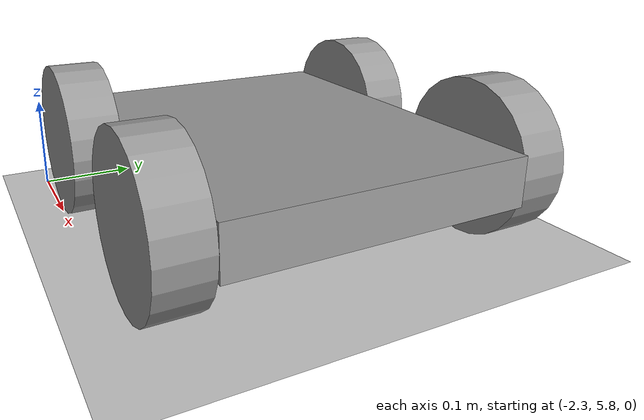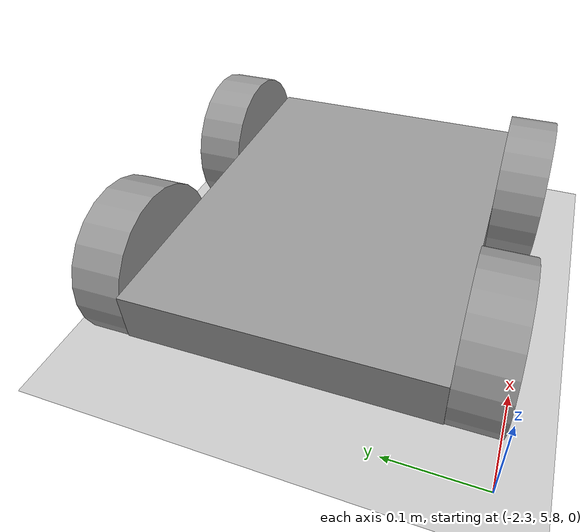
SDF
<sdf version="1.6">
 <world name="default">
  <model name="ground_plane">
   <static>1</static>
   <link name="link">
    <collision name="collision">
     <geometry><plane><normal>0 0 1</normal><size>100 100</size></plane></geometry>
     <surface>
      <contact><collide_bitmask>65535</collide_bitmask></contact>
      <friction><ode><mu>100</mu><mu2>50</mu2></ode></friction>
     </surface>
    </collision>
    <visual name="visual">
     <cast_shadows>0</cast_shadows>
     <geometry><plane><normal>0 0 1</normal><size>100 100</size></plane></geometry>
     <material>
      <script><uri>file://media/materials/scripts/gazebo.material</uri><name>Gazebo/Grey</name></script>
     </material>
    </visual>
   </link>
  </model>
  <model name="robot_clone">
   <link name="link_0">
    <pose>0 1e-06 -0 0 -0 0</pose>
    <inertial>
     <mass>1</mass>
     <inertia>
      <ixx>0.166667</ixx>
      <ixy>0</ixy>
      <ixz>0</ixz>
      <iyy>0.166667</iyy>
      <iyz>0</iyz>
      <izz>0.166667</izz>
     </inertia>
    </inertial>
    <visual name="visual">
     <geometry><box><size>0.4 0.3 0.05</size></box></geometry>
     <material>
      <lighting>1</lighting>
      <script><uri>file://media/materials/scripts/gazebo.material</uri><name>Gazebo/Grey</name></script>
      <shader type="pixel"><normal_map>__default__</normal_map></shader>
      <ambient>0.3 0.3 0.3 1</ambient>
      <diffuse>0.7 0.7 0.7 1</diffuse>
      <specular>0.01 0.01 0.01 1</specular>
      <emissive>0 0 0 1</emissive>
     </material>
    </visual>
    <collision name="collision">
     <geometry><box><size>0.4 0.3 0.05</size></box></geometry>
     <surface>
      <friction>
       <ode><mu>1</mu><mu2>1</mu2><fdir1>0 0 0</fdir1><slip1>0</slip1><slip2>0</slip2></ode>
       <torsional>
        <coefficient>1</coefficient>
        <patch_radius>0</patch_radius>
        <surface_radius>0</surface_radius>
        <use_patch_radius>1</use_patch_radius>
        <ode><slip>0</slip></ode>
       </torsional>
      </friction>
      <bounce><restitution_coefficient>0</restitution_coefficient><threshold>1e+06</threshold></bounce>
      <contact>
       <collide_without_contact>0</collide_without_contact>
       <collide_without_contact_bitmask>1</collide_without_contact_bitmask>
       <collide_bitmask>1</collide_bitmask>
       <ode>
        <soft_cfm>0</soft_cfm>
        <soft_erp>0.2</soft_erp>
        <kp>1e+13</kp>
        <kd>1</kd>
        <max_vel>0.01</max_vel>
        <min_depth>0</min_depth>
       </ode>
       <bullet>
        <split_impulse>1</split_impulse>
        <split_impulse_penetration_threshold>-0.01</split_impulse_penetration_threshold>
        <soft_cfm>0</soft_cfm>
        <soft_erp>0.2</soft_erp>
        <kp>1e+13</kp>
        <kd>1</kd>
       </bullet>
      </contact>
     </surface>
    </collision>
   </link>
   <link name="link_2">
    <pose>-0.12 -0.175012 -0 1.5707 -0 0</pose>
    <inertial>
     <mass>1</mass>
     <inertia><ixx>0.145833</ixx><ixy>0</ixy><ixz>0</ixz><iyy>0.145833</iyy><iyz>0</iyz><izz>0.125</izz></inertia>
    </inertial>
    <visual name="visual">
     <geometry><cylinder><radius>0.08</radius><length>0.05</length></cylinder></geometry>
     <material>
      <lighting>1</lighting>
      <script><uri>file://media/materials/scripts/gazebo.material</uri><name>Gazebo/Grey</name></script>
      <shader type="pixel"><normal_map>__default__</normal_map></shader>
      <ambient>0.3 0.3 0.3 1</ambient>
      <diffuse>0.7 0.7 0.7 1</diffuse>
      <specular>0.01 0.01 0.01 1</specular>
      <emissive>0 0 0 1</emissive>
     </material>
    </visual>
    <collision name="collision">
     <geometry><cylinder><radius>0.08</radius><length>0.05</length></cylinder></geometry>
     <surface>
      <friction>
       <ode><mu>1</mu><mu2>1</mu2><fdir1>0 0 0</fdir1><slip1>0</slip1><slip2>0</slip2></ode>
       <torsional>
        <coefficient>1</coefficient>
        <patch_radius>0</patch_radius>
        <surface_radius>0</surface_radius>
        <use_patch_radius>1</use_patch_radius>
        <ode><slip>0</slip></ode>
       </torsional>
      </friction>
      <bounce><restitution_coefficient>0</restitution_coefficient><threshold>1e+06</threshold></bounce>
      <contact>
       <collide_without_contact>0</collide_without_contact>
       <collide_without_contact_bitmask>1</collide_without_contact_bitmask>
       <collide_bitmask>1</collide_bitmask>
       <ode>
        <soft_cfm>0</soft_cfm>
        <soft_erp>0.2</soft_erp>
        <kp>1e+13</kp>
        <kd>1</kd>
        <max_vel>0.01</max_vel>
        <min_depth>0</min_depth>
       </ode>
       <bullet>
        <split_impulse>1</split_impulse>
        <split_impulse_penetration_threshold>-0.01</split_impulse_penetration_threshold>
        <soft_cfm>0</soft_cfm>
        <soft_erp>0.2</soft_erp>
        <kp>1e+13</kp>
        <kd>1</kd>
       </bullet>
      </contact>
     </surface>
    </collision>
   </link>
   <link name="link_2_clone">
    <pose>-0.12 0.175009 -0 1.5707 -0 0</pose>
    <inertial>
     <mass>1</mass>
     <inertia><ixx>0.145833</ixx><ixy>0</ixy><ixz>0</ixz><iyy>0.145833</iyy><iyz>0</iyz><izz>0.125</izz></inertia>
    </inertial>
    <visual name="visual">
     <geometry><cylinder><radius>0.08</radius><length>0.05</length></cylinder></geometry>
     <material>
      <lighting>1</lighting>
      <script><uri>file://media/materials/scripts/gazebo.material</uri><name>Gazebo/Grey</name></script>
      <shader type="pixel"><normal_map>__default__</normal_map></shader>
      <ambient>0.3 0.3 0.3 1</ambient>
      <diffuse>0.7 0.7 0.7 1</diffuse>
      <specular>0.01 0.01 0.01 1</specular>
      <emissive>0 0 0 1</emissive>
     </material>
    </visual>
    <collision name="collision">
     <geometry><cylinder><radius>0.08</radius><length>0.05</length></cylinder></geometry>
     <surface>
      <friction>
       <ode><mu>1</mu><mu2>1</mu2><fdir1>0 0 0</fdir1><slip1>0</slip1><slip2>0</slip2></ode>
       <torsional>
        <coefficient>1</coefficient>
        <patch_radius>0</patch_radius>
        <surface_radius>0</surface_radius>
        <use_patch_radius>1</use_patch_radius>
        <ode><slip>0</slip></ode>
       </torsional>
      </friction>
      <bounce><restitution_coefficient>0</restitution_coefficient><threshold>1e+06</threshold></bounce>
      <contact>
       <collide_without_contact>0</collide_without_contact>
       <collide_without_contact_bitmask>1</collide_without_contact_bitmask>
       <collide_bitmask>1</collide_bitmask>
       <ode>
        <soft_cfm>0</soft_cfm>
        <soft_erp>0.2</soft_erp>
        <kp>1e+13</kp>
        <kd>1</kd>
        <max_vel>0.01</max_vel>
        <min_depth>0</min_depth>
       </ode>
       <bullet>
        <split_impulse>1</split_impulse>
        <split_impulse_penetration_threshold>-0.01</split_impulse_penetration_threshold>
        <soft_cfm>0</soft_cfm>
        <soft_erp>0.2</soft_erp>
        <kp>1e+13</kp>
        <kd>1</kd>
       </bullet>
      </contact>
     </surface>
    </collision>
   </link>
   <link name="link_2_clone_0">
    <pose>0.12 -0.175007 -0 1.5707 -0 0</pose>
    <inertial>
     <mass>1</mass>
     <inertia><ixx>0.145833</ixx><ixy>0</ixy><ixz>0</ixz><iyy>0.145833</iyy><iyz>0</iyz><izz>0.125</izz></inertia>
    </inertial>
    <visual name="visual">
     <geometry><cylinder><radius>0.08</radius><length>0.05</length></cylinder></geometry>
     <material>
      <lighting>1</lighting>
      <script><uri>file://media/materials/scripts/gazebo.material</uri><name>Gazebo/Grey</name></script>
      <shader type="pixel"><normal_map>__default__</normal_map></shader>
      <ambient>0.3 0.3 0.3 1</ambient>
      <diffuse>0.7 0.7 0.7 1</diffuse>
      <specular>0.01 0.01 0.01 1</specular>
      <emissive>0 0 0 1</emissive>
     </material>
    </visual>
    <collision name="collision">
     <geometry><cylinder><radius>0.08</radius><length>0.05</length></cylinder></geometry>
     <surface>
      <friction>
       <ode><mu>1</mu><mu2>1</mu2><fdir1>0 0 0</fdir1><slip1>0</slip1><slip2>0</slip2></ode>
       <torsional>
        <coefficient>1</coefficient>
        <patch_radius>0</patch_radius>
        <surface_radius>0</surface_radius>
        <use_patch_radius>1</use_patch_radius>
        <ode><slip>0</slip></ode>
       </torsional>
      </friction>
      <bounce><restitution_coefficient>0</restitution_coefficient><threshold>1e+06</threshold></bounce>
      <contact>
       <collide_without_contact>0</collide_without_contact>
       <collide_without_contact_bitmask>1</collide_without_contact_bitmask>
       <collide_bitmask>1</collide_bitmask>
       <ode>
        <soft_cfm>0</soft_cfm>
        <soft_erp>0.2</soft_erp>
        <kp>1e+13</kp>
        <kd>1</kd>
        <max_vel>0.01</max_vel>
        <min_depth>0</min_depth>
       </ode>
       <bullet>
        <split_impulse>1</split_impulse>
        <split_impulse_penetration_threshold>-0.01</split_impulse_penetration_threshold>
        <soft_cfm>0</soft_cfm>
        <soft_erp>0.2</soft_erp>
        <kp>1e+13</kp>
        <kd>1</kd>
       </bullet>
      </contact>
     </surface>
    </collision>
   </link>
   <link name="link_2_clone_1">
    <pose>0.12 0.175009 -0 1.5707 -0 0</pose>
    <inertial>
     <mass>1</mass>
     <inertia><ixx>0.145833</ixx><ixy>0</ixy><ixz>0</ixz><iyy>0.145833</iyy><iyz>0</iyz><izz>0.125</izz></inertia>
    </inertial>
    <visual name="visual">
     <geometry><cylinder><radius>0.08</radius><length>0.05</length></cylinder></geometry>
     <material>
      <lighting>1</lighting>
      <script><uri>file://media/materials/scripts/gazebo.material</uri><name>Gazebo/Grey</name></script>
      <shader type="pixel"><normal_map>__default__</normal_map></shader>
      <ambient>0.3 0.3 0.3 1</ambient>
      <diffuse>0.7 0.7 0.7 1</diffuse>
      <specular>0.01 0.01 0.01 1</specular>
      <emissive>0 0 0 1</emissive>
     </material>
    </visual>
    <collision name="collision">
     <geometry><cylinder><radius>0.08</radius><length>0.05</length></cylinder></geometry>
     <surface>
      <friction>
       <ode><mu>1</mu><mu2>1</mu2><fdir1>0 0 0</fdir1><slip1>0</slip1><slip2>0</slip2></ode>
       <torsional>
        <coefficient>1</coefficient>
        <patch_radius>0</patch_radius>
        <surface_radius>0</surface_radius>
        <use_patch_radius>1</use_patch_radius>
        <ode><slip>0</slip></ode>
       </torsional>
      </friction>
      <bounce><restitution_coefficient>0</restitution_coefficient><threshold>1e+06</threshold></bounce>
      <contact>
       <collide_without_contact>0</collide_without_contact>
       <collide_without_contact_bitmask>1</collide_without_contact_bitmask>
       <collide_bitmask>1</collide_bitmask>
       <ode>
        <soft_cfm>0</soft_cfm>
        <soft_erp>0.2</soft_erp>
        <kp>1e+13</kp>
        <kd>1</kd>
        <max_vel>0.01</max_vel>
        <min_depth>0</min_depth>
       </ode>
       <bullet>
        <split_impulse>1</split_impulse>
        <split_impulse_penetration_threshold>-0.01</split_impulse_penetration_threshold>
        <soft_cfm>0</soft_cfm>
        <soft_erp>0.2</soft_erp>
        <kp>1e+13</kp>
        <kd>1</kd>
       </bullet>
      </contact>
     </surface>
    </collision>
   </link>
   <joint name="link_0_JOINT_1" type="revolute">
    <parent>link_0</parent>
    <child>link_2</child>
    <axis>
     <xyz>0 0 1</xyz>
     <use_parent_model_frame>0</use_parent_model_frame>
     <limit>
      <lower>-1.79769e+308</lower>
      <upper>1.79769e+308</upper>
      <effort>-1</effort>
      <velocity>-1</velocity>
     </limit>
     <dynamics>
      <spring_reference>0</spring_reference>
      <spring_stiffness>0</spring_stiffness>
      <damping>0</damping>
     </dynamics>
    </axis>
    <physics>
     <ode><limit><cfm>0</cfm><erp>0.2</erp></limit><suspension><cfm>0</cfm><erp>0.2</erp></suspension></ode>
    </physics>
   </joint>
   <joint name="link_0_JOINT_2" type="revolute">
    <parent>link_0</parent>
    <child>link_2_clone</child>
    <axis>
     <xyz>0 0 1</xyz>
     <use_parent_model_frame>0</use_parent_model_frame>
     <limit>
      <lower>-1.79769e+308</lower>
      <upper>1.79769e+308</upper>
      <effort>-1</effort>
      <velocity>-1</velocity>
     </limit>
     <dynamics>
      <spring_reference>0</spring_reference>
      <spring_stiffness>0</spring_stiffness>
      <damping>0</damping>
     </dynamics>
    </axis>
    <physics>
     <ode><limit><cfm>0</cfm><erp>0.2</erp></limit><suspension><cfm>0</cfm><erp>0.2</erp></suspension></ode>
    </physics>
   </joint>
   <joint name="link_0_JOINT_3" type="revolute">
    <parent>link_0</parent>
    <child>link_2_clone_0</child>
    <axis>
     <xyz>0 0 1</xyz>
     <use_parent_model_frame>0</use_parent_model_frame>
     <limit>
      <lower>-1.79769e+308</lower>
      <upper>1.79769e+308</upper>
      <effort>-1</effort>
      <velocity>-1</velocity>
     </limit>
     <dynamics>
      <spring_reference>0</spring_reference>
      <spring_stiffness>0</spring_stiffness>
      <damping>0</damping>
     </dynamics>
    </axis>
    <physics>
     <ode><limit><cfm>0</cfm><erp>0.2</erp></limit><suspension><cfm>0</cfm><erp>0.2</erp></suspension></ode>
    </physics>
   </joint>
   <joint name="link_0_JOINT_4" type="revolute">
    <parent>link_0</parent>
    <child>link_2_clone_1</child>
    <axis>
     <xyz>0 0 1</xyz>
     <use_parent_model_frame>0</use_parent_model_frame>
     <limit>
      <lower>-1.79769e+308</lower>
      <upper>1.79769e+308</upper>
      <effort>-1</effort>
      <velocity>-1</velocity>
     </limit>
     <dynamics>
      <spring_reference>0</spring_reference>
      <spring_stiffness>0</spring_stiffness>
      <damping>0</damping>
     </dynamics>
    </axis>
    <physics>
     <ode><limit><cfm>0</cfm><erp>0.2</erp></limit><suspension><cfm>0</cfm><erp>0.2</erp></suspension></ode>
    </physics>
   </joint>
   <static>0</static>
   <pose>-2.08744 6.0033 0.080003 2e-06 1e-06 0.009436</pose>
  </model>
 </world>
</sdf>
